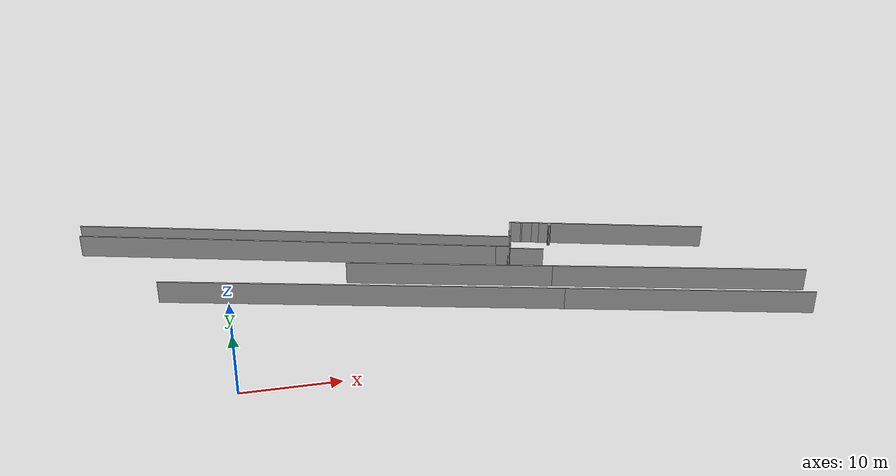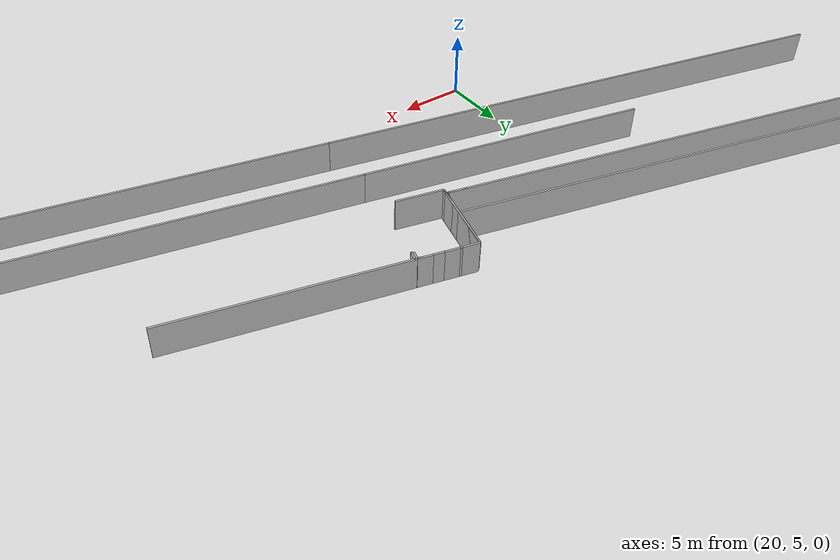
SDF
<?xml version="1.0" ?>
<sdf version="1.6">
  <model name="sps_0906">
    <pose frame="">0 0 0 0 -0 0</pose>
    <static>1</static>
    <self_collide>0</self_collide>
    <allow_auto_disable>0</allow_auto_disable>
    <link name="Wall7">
      <kinematic>0</kinematic>
      <gravity>1</gravity>
      <self_collide>0</self_collide>
      <collision name="collision">
        <geometry>
          <box>
            <size>48.622 0.15 2.5</size>
          </box>
        </geometry>
        <pose frame="">0 0 0 0 -0 0</pose>
      </collision>
      <visual name="visual">
        <geometry>
          <box>
            <size>48.622 0.15 2.5</size>
          </box>
        </geometry>
        <pose frame="">0 0 0 0 -0 0</pose>
        <cast_shadows>1</cast_shadows>
        <transparency>0.0</transparency>
      </visual>
      <pose frame="">8.03396 25.9531 1.25 0 0 -0.248456</pose>
    </link>
    <link name="Wall101">
      <kinematic>0</kinematic>
      <gravity>1</gravity>
      <self_collide>0</self_collide>
      <collision name="collision">
        <geometry>
          <box>
            <size>0.400058 0.15 2.5</size>
          </box>
        </geometry>
        <pose frame="">0 0 0 0 -0 0</pose>
      </collision>
      <visual name="visual">
        <geometry>
          <box>
            <size>0.400058 0.15 2.5</size>
          </box>
        </geometry>
        <pose frame="">0 0 0 0 -0 0</pose>
        <cast_shadows>1</cast_shadows>
        <transparency>0.0</transparency>
      </visual>
      <pose frame="">31.0085 17.6482 1.25 0 0 -1.81881</pose>
    </link>
    <link name="Wall103">
      <kinematic>0</kinematic>
      <gravity>1</gravity>
      <self_collide>0</self_collide>
      <collision name="collision">
        <geometry>
          <box>
            <size>3.6198 0.15 2.5</size>
          </box>
        </geometry>
        <pose frame="">0 0 0 0 -0 0</pose>
      </collision>
      <visual name="visual">
        <geometry>
          <box>
            <size>3.6198 0.15 2.5</size>
          </box>
        </geometry>
        <pose frame="">0 0 0 0 -0 0</pose>
        <cast_shadows>1</cast_shadows>
        <transparency>0.0</transparency>
      </visual>
      <pose frame="">32.7144 17.0119 1.25 0 0 -0.246916</pose>
    </link>
    <link name="Wall176">
      <kinematic>0</kinematic>
      <gravity>1</gravity>
      <self_collide>0</self_collide>
      <collision name="collision">
        <geometry>
          <box>
            <size>0.650131 0.15 2.5</size>
          </box>
        </geometry>
        <pose frame="">0 0 0 0 -0 0</pose>
      </collision>
      <visual name="visual">
        <geometry>
          <box>
            <size>0.650131 0.15 2.5</size>
          </box>
        </geometry>
        <pose frame="">0 0 0 0 -0 0</pose>
        <cast_shadows>1</cast_shadows>
        <transparency>0.0</transparency>
      </visual>
      <pose frame="">36.6057 21.826 1.25 0 0 -1.81912</pose>
    </link>
    <link name="Wall182">
      <kinematic>0</kinematic>
      <gravity>1</gravity>
      <self_collide>0</self_collide>
      <collision name="collision">
        <geometry>
          <box>
            <size>18.3931 0.15 2.5</size>
          </box>
        </geometry>
        <pose frame="">0 0 0 0 -0 0</pose>
      </collision>
      <visual name="visual">
        <geometry>
          <box>
            <size>18.3931 0.15 2.5</size>
          </box>
        </geometry>
        <pose frame="">0 0 0 0 -0 0</pose>
        <cast_shadows>1</cast_shadows>
        <transparency>0.0</transparency>
      </visual>
      <pose frame="">44.5342 20.1522 1.25 0 -0 2.89341</pose>
    </link>
    <link name="Wall334">
      <kinematic>0</kinematic>
      <gravity>1</gravity>
      <self_collide>0</self_collide>
      <collision name="collision">
        <geometry>
          <box>
            <size>3.34943 0.15 2.5</size>
          </box>
        </geometry>
        <pose frame="">0 0 0 0 -0 0</pose>
      </collision>
      <visual name="visual">
        <geometry>
          <box>
            <size>3.34943 0.15 2.5</size>
          </box>
        </geometry>
        <pose frame="">0 0 0 0 -0 0</pose>
        <cast_shadows>1</cast_shadows>
        <transparency>0.0</transparency>
      </visual>
      <pose frame="">32.0095 21.5984 1.25 0 0 -1.81873</pose>
    </link>
    <link name="Wall335">
      <kinematic>0</kinematic>
      <gravity>1</gravity>
      <self_collide>0</self_collide>
      <collision name="collision">
        <geometry>
          <box>
            <size>0.149912 0.15 2.5</size>
          </box>
        </geometry>
        <pose frame="">0 0 0 0 -0 0</pose>
      </collision>
      <visual name="visual">
        <geometry>
          <box>
            <size>0.149912 0.15 2.5</size>
          </box>
        </geometry>
        <pose frame="">0 0 0 0 -0 0</pose>
        <cast_shadows>1</cast_shadows>
        <transparency>0.0</transparency>
      </visual>
      <pose frame="">36.5985 21.4926 1.25 0 -0 2.89523</pose>
    </link>
    <link name="Wall336">
      <kinematic>0</kinematic>
      <gravity>1</gravity>
      <self_collide>0</self_collide>
      <collision name="collision">
        <geometry>
          <box>
            <size>0.649731 0.15 2.5</size>
          </box>
        </geometry>
        <pose frame="">0 0 0 0 -0 0</pose>
      </collision>
      <visual name="visual">
        <geometry>
          <box>
            <size>0.649731 0.15 2.5</size>
          </box>
        </geometry>
        <pose frame="">0 0 0 0 -0 0</pose>
        <cast_shadows>1</cast_shadows>
        <transparency>0.0</transparency>
      </visual>
      <pose frame="">36.7512 21.7892 1.25 0 0 -1.81937</pose>
    </link>
    <link name="Wall403">
      <kinematic>0</kinematic>
      <gravity>1</gravity>
      <self_collide>0</self_collide>
      <collision name="collision">
        <geometry>
          <box>
            <size>0.208675 0.15 2.5</size>
          </box>
        </geometry>
        <pose frame="">0 0 0 0 -0 0</pose>
      </collision>
      <visual name="visual">
        <geometry>
          <box>
            <size>0.208675 0.15 2.5</size>
          </box>
        </geometry>
        <pose frame="">0 0 0 0 -0 0</pose>
        <cast_shadows>1</cast_shadows>
        <transparency>0.0</transparency>
      </visual>
      <pose frame="">30.9565 17.8676 1.25 0 -0 2.89487</pose>
    </link>
    <link name="Wall404">
      <kinematic>0</kinematic>
      <gravity>1</gravity>
      <self_collide>0</self_collide>
      <collision name="collision">
        <geometry>
          <box>
            <size>47.8344 0.15 2.5</size>
          </box>
        </geometry>
        <pose frame="">0 0 0 0 -0 0</pose>
      </collision>
      <visual name="visual">
        <geometry>
          <box>
            <size>47.8344 0.15 2.5</size>
          </box>
        </geometry>
        <pose frame="">0 0 0 0 -0 0</pose>
        <cast_shadows>1</cast_shadows>
        <transparency>0.0</transparency>
      </visual>
      <pose frame="">7.66236 23.7343 1.25 0 -0 2.89487</pose>
    </link>
    <link name="Wall411">
      <kinematic>0</kinematic>
      <gravity>1</gravity>
      <self_collide>0</self_collide>
      <collision name="collision">
        <geometry>
          <box>
            <size>25.945 0.15 2.5</size>
          </box>
        </geometry>
        <pose frame="">0 0 0 0 -0 0</pose>
      </collision>
      <visual name="visual">
        <geometry>
          <box>
            <size>25.945 0.15 2.5</size>
          </box>
        </geometry>
        <pose frame="">0 0 0 0 -0 0</pose>
        <cast_shadows>1</cast_shadows>
        <transparency>0.0</transparency>
      </visual>
      <pose frame="">47.1055 5.29008 1.25 0 -0 2.91334</pose>
    </link>
    <link name="Wall412">
      <kinematic>0</kinematic>
      <gravity>1</gravity>
      <self_collide>0</self_collide>
      <collision name="collision">
        <geometry>
          <box>
            <size>42.7245 0.15 2.5</size>
          </box>
        </geometry>
        <pose frame="">0 0 0 0 -0 0</pose>
      </collision>
      <visual name="visual">
        <geometry>
          <box>
            <size>42.7245 0.15 2.5</size>
          </box>
        </geometry>
        <pose frame="">0 0 0 0 -0 0</pose>
        <cast_shadows>1</cast_shadows>
        <transparency>0.0</transparency>
      </visual>
      <pose frame="">13.6613 13.0593 1.25 0 -0 2.91334</pose>
    </link>
    <link name="Wall416">
      <kinematic>0</kinematic>
      <gravity>1</gravity>
      <self_collide>0</self_collide>
      <collision name="collision">
        <geometry>
          <box>
            <size>26.9962 0.15 2.5</size>
          </box>
        </geometry>
        <pose frame="">0 0 0 0 -0 0</pose>
      </collision>
      <visual name="visual">
        <geometry>
          <box>
            <size>26.9962 0.15 2.5</size>
          </box>
        </geometry>
        <pose frame="">0 0 0 0 -0 0</pose>
        <cast_shadows>1</cast_shadows>
        <transparency>0.0</transparency>
      </visual>
      <pose frame="">47.6175 9.81626 1.25 0 -0 2.91334</pose>
    </link>
    <link name="Wall417">
      <kinematic>0</kinematic>
      <gravity>1</gravity>
      <self_collide>0</self_collide>
      <collision name="collision">
        <geometry>
          <box>
            <size>22.1959 0.15 2.5</size>
          </box>
        </geometry>
        <pose frame="">0 0 0 0 -0 0</pose>
      </collision>
      <visual name="visual">
        <geometry>
          <box>
            <size>22.1959 0.15 2.5</size>
          </box>
        </geometry>
        <pose frame="">0 0 0 0 -0 0</pose>
        <cast_shadows>1</cast_shadows>
        <transparency>0.0</transparency>
      </visual>
      <pose frame="">23.6593 15.3818 1.25 0 -0 2.91334</pose>
    </link>
    <link name="Wall1381">
      <kinematic>0</kinematic>
      <gravity>1</gravity>
      <self_collide>0</self_collide>
      <collision name="collision">
        <geometry>
          <box>
            <size>0.400058 0.15 2.5</size>
          </box>
        </geometry>
        <pose frame="">0 0 0 0 -0 0</pose>
      </collision>
      <visual name="visual">
        <geometry>
          <box>
            <size>0.400058 0.15 2.5</size>
          </box>
        </geometry>
        <pose frame="">0 0 0 0 -0 0</pose>
        <cast_shadows>1</cast_shadows>
        <transparency>0.0</transparency>
      </visual>
      <pose frame="">31.0085 17.6482 1.25 0 -0 1.32278</pose>
    </link>
    <link name="Wall1382">
      <kinematic>0</kinematic>
      <gravity>1</gravity>
      <self_collide>0</self_collide>
      <collision name="collision">
        <geometry>
          <box>
            <size>2.20026 0.15 2.5</size>
          </box>
        </geometry>
        <pose frame="">0 0 0 0 -0 0</pose>
      </collision>
      <visual name="visual">
        <geometry>
          <box>
            <size>2.20026 0.15 2.5</size>
          </box>
        </geometry>
        <pose frame="">0 0 0 0 -0 0</pose>
        <cast_shadows>1</cast_shadows>
        <transparency>0.0</transparency>
      </visual>
      <pose frame="">31.3281 18.9085 1.25 0 -0 1.32245</pose>
    </link>
    <link name="Wall1383">
      <kinematic>0</kinematic>
      <gravity>1</gravity>
      <self_collide>0</self_collide>
      <collision name="collision">
        <geometry>
          <box>
            <size>3.34943 0.15 2.5</size>
          </box>
        </geometry>
        <pose frame="">0 0 0 0 -0 0</pose>
      </collision>
      <visual name="visual">
        <geometry>
          <box>
            <size>3.34943 0.15 2.5</size>
          </box>
        </geometry>
        <pose frame="">0 0 0 0 -0 0</pose>
        <cast_shadows>1</cast_shadows>
        <transparency>0.0</transparency>
      </visual>
      <pose frame="">32.0095 21.5984 1.25 0 -0 1.32286</pose>
    </link>
    <link name="Wall1384">
      <kinematic>0</kinematic>
      <gravity>1</gravity>
      <self_collide>0</self_collide>
      <collision name="collision">
        <geometry>
          <box>
            <size>1.24984 0.15 2.5</size>
          </box>
        </geometry>
        <pose frame="">0 0 0 0 -0 0</pose>
      </collision>
      <visual name="visual">
        <geometry>
          <box>
            <size>1.24984 0.15 2.5</size>
          </box>
        </geometry>
        <pose frame="">0 0 0 0 -0 0</pose>
        <cast_shadows>1</cast_shadows>
        <transparency>0.0</transparency>
      </visual>
      <pose frame="">33.0262 23.0685 1.25 0 0 -0.247975</pose>
    </link>
    <link name="Wall1385">
      <kinematic>0</kinematic>
      <gravity>1</gravity>
      <self_collide>0</self_collide>
      <collision name="collision">
        <geometry>
          <box>
            <size>0.150269 0.15 2.5</size>
          </box>
        </geometry>
        <pose frame="">0 0 0 0 -0 0</pose>
      </collision>
      <visual name="visual">
        <geometry>
          <box>
            <size>0.150269 0.15 2.5</size>
          </box>
        </geometry>
        <pose frame="">0 0 0 0 -0 0</pose>
        <cast_shadows>1</cast_shadows>
        <transparency>0.0</transparency>
      </visual>
      <pose frame="">33.7049 22.8966 1.25 0 0 -0.249116</pose>
    </link>
    <link name="Wall1386">
      <kinematic>0</kinematic>
      <gravity>1</gravity>
      <self_collide>0</self_collide>
      <collision name="collision">
        <geometry>
          <box>
            <size>1.09987 0.15 2.5</size>
          </box>
        </geometry>
        <pose frame="">0 0 0 0 -0 0</pose>
      </collision>
      <visual name="visual">
        <geometry>
          <box>
            <size>1.09987 0.15 2.5</size>
          </box>
        </geometry>
        <pose frame="">0 0 0 0 -0 0</pose>
        <cast_shadows>1</cast_shadows>
        <transparency>0.0</transparency>
      </visual>
      <pose frame="">34.3108 22.743 1.25 0 0 -0.248209</pose>
    </link>
    <link name="Wall1387">
      <kinematic>0</kinematic>
      <gravity>1</gravity>
      <self_collide>0</self_collide>
      <collision name="collision">
        <geometry>
          <box>
            <size>0.800162 0.15 2.5</size>
          </box>
        </geometry>
        <pose frame="">0 0 0 0 -0 0</pose>
      </collision>
      <visual name="visual">
        <geometry>
          <box>
            <size>0.800162 0.15 2.5</size>
          </box>
        </geometry>
        <pose frame="">0 0 0 0 -0 0</pose>
        <cast_shadows>1</cast_shadows>
        <transparency>0.0</transparency>
      </visual>
      <pose frame="">35.2317 22.5096 1.25 0 0 -0.248235</pose>
    </link>
    <link name="Wall1388">
      <kinematic>0</kinematic>
      <gravity>1</gravity>
      <self_collide>0</self_collide>
      <collision name="collision">
        <geometry>
          <box>
            <size>1.09987 0.15 2.5</size>
          </box>
        </geometry>
        <pose frame="">0 0 0 0 -0 0</pose>
      </collision>
      <visual name="visual">
        <geometry>
          <box>
            <size>1.09987 0.15 2.5</size>
          </box>
        </geometry>
        <pose frame="">0 0 0 0 -0 0</pose>
        <cast_shadows>1</cast_shadows>
        <transparency>0.0</transparency>
      </visual>
      <pose frame="">36.1525 22.2762 1.25 0 0 -0.248209</pose>
    </link>
    <link name="Wall1389">
      <kinematic>0</kinematic>
      <gravity>1</gravity>
      <self_collide>0</self_collide>
      <collision name="collision">
        <geometry>
          <box>
            <size>0.150076 0.15 2.5</size>
          </box>
        </geometry>
        <pose frame="">0 0 0 0 -0 0</pose>
      </collision>
      <visual name="visual">
        <geometry>
          <box>
            <size>0.150076 0.15 2.5</size>
          </box>
        </geometry>
        <pose frame="">0 0 0 0 -0 0</pose>
        <cast_shadows>1</cast_shadows>
        <transparency>0.0</transparency>
      </visual>
      <pose frame="">36.7584 22.1226 1.25 0 0 -0.249023</pose>
    </link>
    <link name="Wall1901">
      <kinematic>0</kinematic>
      <gravity>1</gravity>
      <self_collide>0</self_collide>
      <collision name="collision">
        <geometry>
          <box>
            <size>2.20026 0.15 2.5</size>
          </box>
        </geometry>
        <pose frame="">0 0 0 0 -0 0</pose>
      </collision>
      <visual name="visual">
        <geometry>
          <box>
            <size>2.20026 0.15 2.5</size>
          </box>
        </geometry>
        <pose frame="">0 0 0 0 -0 0</pose>
        <cast_shadows>1</cast_shadows>
        <transparency>0.0</transparency>
      </visual>
      <pose frame="">31.3281 18.9085 1.25 0 0 -1.81915</pose>
    </link>
    <link name="Wall1902">
      <kinematic>0</kinematic>
      <gravity>1</gravity>
      <self_collide>0</self_collide>
      <collision name="collision">
        <geometry>
          <box>
            <size>1.56993 0.15 2.5</size>
          </box>
        </geometry>
        <pose frame="">0 0 0 0 -0 0</pose>
      </collision>
      <visual name="visual">
        <geometry>
          <box>
            <size>1.56993 0.15 2.5</size>
          </box>
        </geometry>
        <pose frame="">0 0 0 0 -0 0</pose>
        <cast_shadows>1</cast_shadows>
        <transparency>0.0</transparency>
      </visual>
      <pose frame="">30.2964 18.0338 1.25 0 -0 2.89491</pose>
    </link>
  </model>
</sdf>
